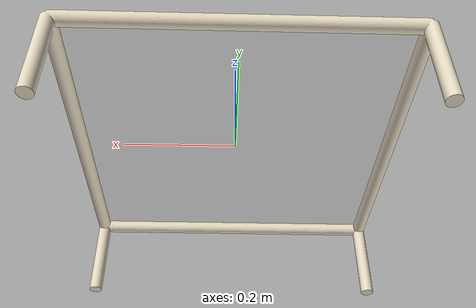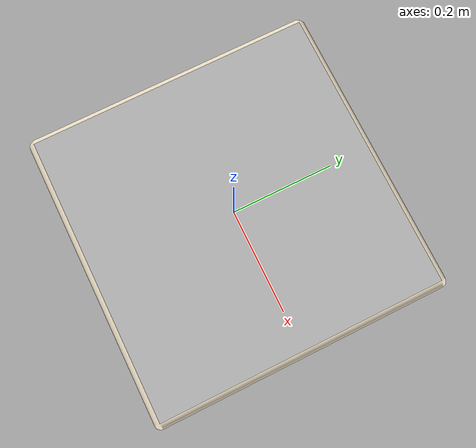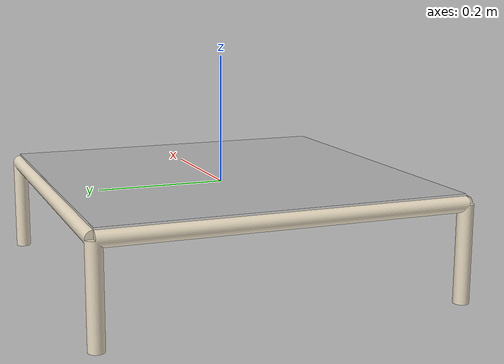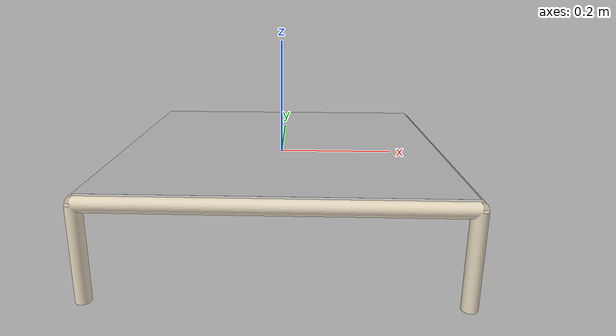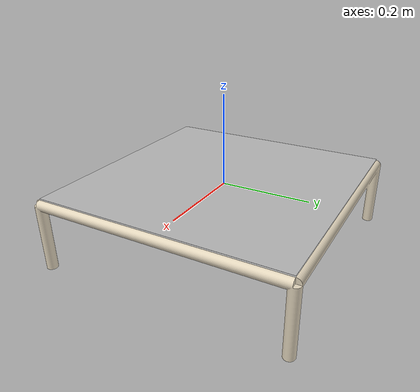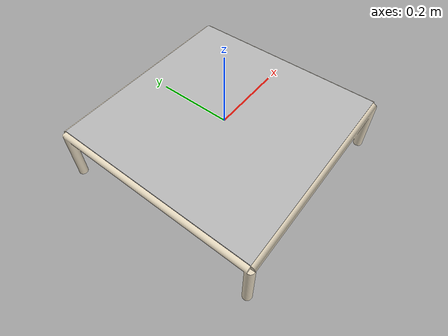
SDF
<?xml version='1.0' encoding='utf-8'?>
<sdf version="1.7">
  <model name="crabs">
    <static>1</static>
    <link name="link">
      <visual name="structure_visual">
        <geometry>
          <mesh>
            <uri>model://robot_description/worlds/assets/crabs/meshes/structure.stl</uri>
            <scale>0.001 0.001 0.001</scale>
          </mesh>
        </geometry>
        <material>
          <ambient>0.9 0.85 0.75 1</ambient>
          <diffuse>0.9 0.85 0.75 1</diffuse>
          <specular>0.2 0.2 0.2 1</specular>
        </material>
      </visual>
      <visual name="top_plate_visual">
        <geometry>
          <mesh>
            <uri>model://robot_description/worlds/assets/crabs/meshes/top_plate.stl</uri>
            <scale>0.001 0.001 0.001</scale>
          </mesh>
        </geometry>
        <material>
          <ambient>.9 .9 .9 1</ambient>
          <diffuse>.9 .9 .9 1</diffuse>
        </material>
      </visual>
      <collision name="collision">
        <geometry>
          <box>
            <size>.574 .574 .165</size>
          </box>
        </geometry>
        <pose>0 0 -.0675 0 0 0</pose>
      </collision>
      <visual name="crab_texture">
        <geometry>
          <mesh>
            <uri>model://robot_description/worlds/assets/crabs/meshes/crab_texture.dae</uri>
          </mesh>
        </geometry>
      </visual>
    </link>
  </model>
</sdf>
